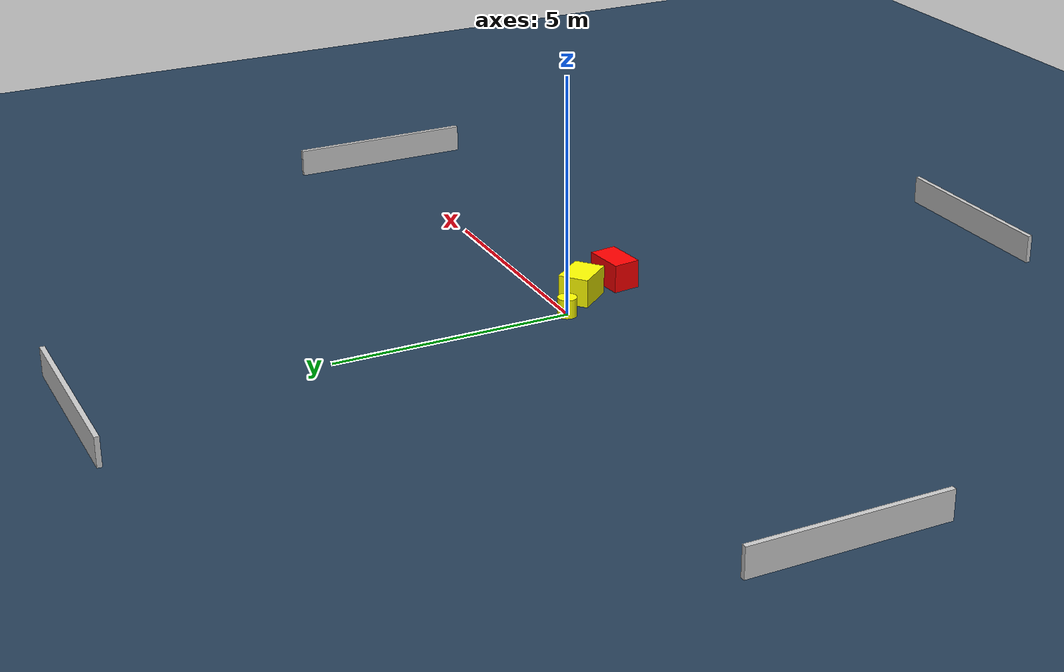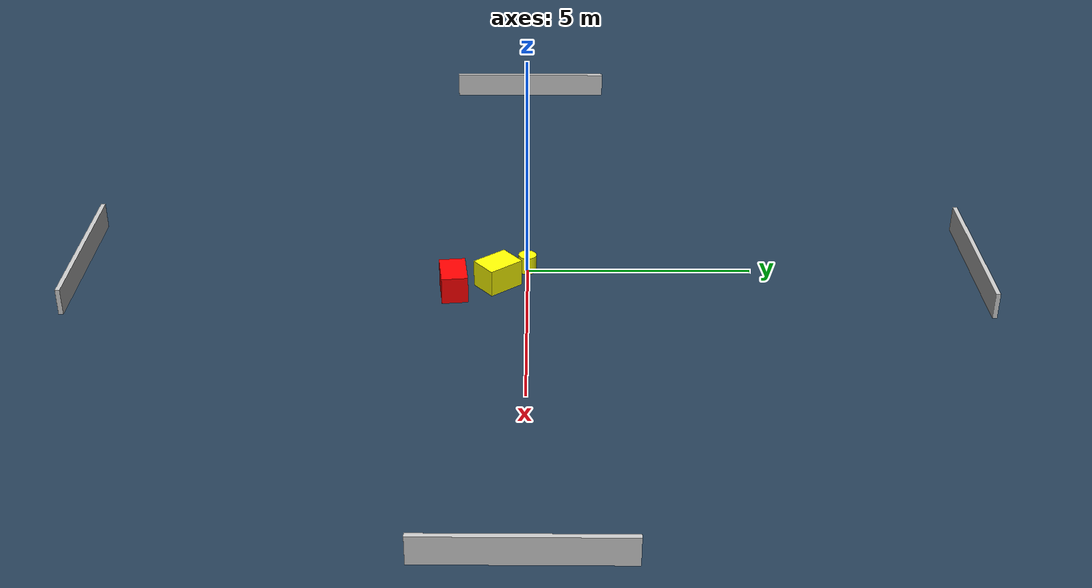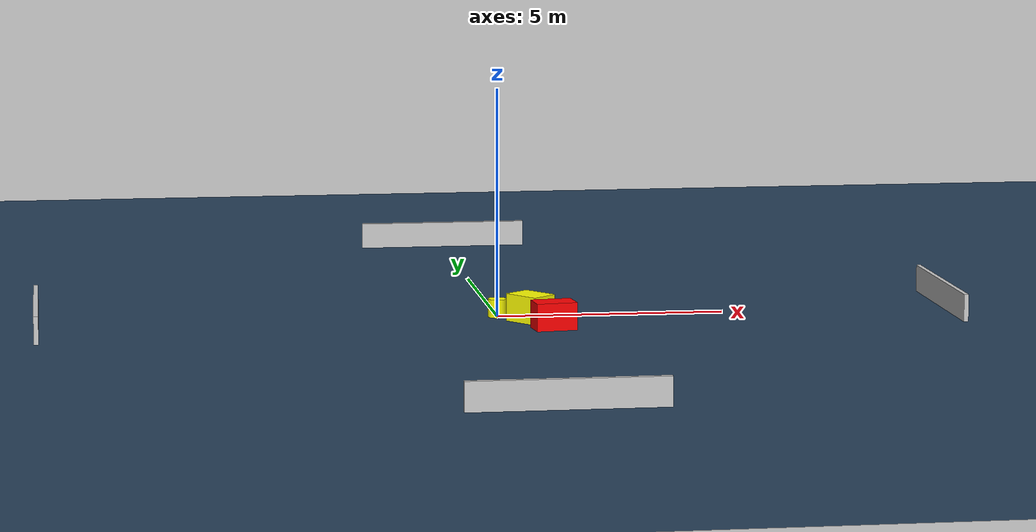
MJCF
<?xml version="1.0" ?>
<mujoco model="generated_environment">
  <option timestep="0.01" integrator="RK4" cone="elliptic"/>
  <default>
    <geom density="1"/>
  </default>
  <asset>
    <texture builtin="gradient" height="3072" name="skybox" rgb1="0.3 0.5 0.7" rgb2="0 0 0" type="skybox" width="512"/>
    <texture builtin="checker" height="300" name="groundplane" rgb1="0.2 0.3 0.4" rgb2="0.1 0.2 0.3" type="2d" width="300"/>
    <material name="groundplane" reflectance="0.2" texrepeat="5 5" texture="groundplane"/>
  </asset>
  <worldbody>
    <light dir="0 0 -1" directional="true" pos="0 0 1.5"/>
    <geom condim="3" friction="0.5 0.005 0.001" material="groundplane" name="floor" pos="0 0 0" size="0 0 0.05" type="plane"/>
    <body name="walls">
      <geom name="wall_1" condim="4" pos="-10.0 0.0 0.3" rgba="0.800000011920929 0.800000011920929 0.800000011920929 1.0" size="0.05 2.0 0.3" type="box"/>
      <geom name="wall_2" condim="4" pos="10.0 0.0 0.3" rgba="0.800000011920929 0.800000011920929 0.800000011920929 1.0" size="0.05 2.0 0.3" type="box"/>
      <geom name="wall_3" condim="4" pos="0.0 -10.0 0.3" rgba="0.800000011920929 0.800000011920929 0.800000011920929 1.0" size="2.0 0.05 0.3" type="box"/>
      <geom name="wall_4" condim="4" pos="0.0 10.0 0.3" rgba="0.800000011920929 0.800000011920929 0.800000011920929 1.0" size="2.0 0.05 0.3" type="box"/>
    </body>
    <body name="robot">
      <joint name="joint_x" type="slide" pos="0 0 0" axis="1 0 0"/>
      <joint name="joint_y" type="slide" pos="0 0 0" axis="0 1 0"/>
      <geom name="robot" type="cylinder" pos="0.0 0.0 0.2" size="0.2 0.2 0.0" mass="5.0" friction="1.0 0.005 0.0001" condim="4" rgba="1.0 1.0 0.0 1.0"/>
    </body>
    <body name="obstacle_1_movable">
      <geom name="obstacle_1_movable" condim="4" pos="0.6431614745634335 -0.6479495362279181 0.3" euler="0 0 218.7665765391729" friction="0.0 0.005 0.001" rgba="1.0 1.0 0.0 1.0" size="0.3219353947063036 0.42172147323215536 0.3" type="box" mass="0.1"/>
      <joint type="free"/>
    </body>
    <body name="obstacle_2_static">
      <geom name="obstacle_2_static" condim="4" pos="1.0071150946710734 -1.6113634946781288 0.3" euler="0 0 186.4782068038681" friction="0.0 0.005 0.001" rgba="1.0 0.0 0.0 1.0" size="0.4433080501168343 0.28736630333780966 0.3" type="box"/>
    </body>
  </worldbody>
  <actuator>
    <motor name="actuator_x" joint="joint_x" gear="1" ctrlrange="-1 1"/>
    <motor name="actuator_y" joint="joint_y" gear="1" ctrlrange="-1 1"/>
  </actuator>
</mujoco>
